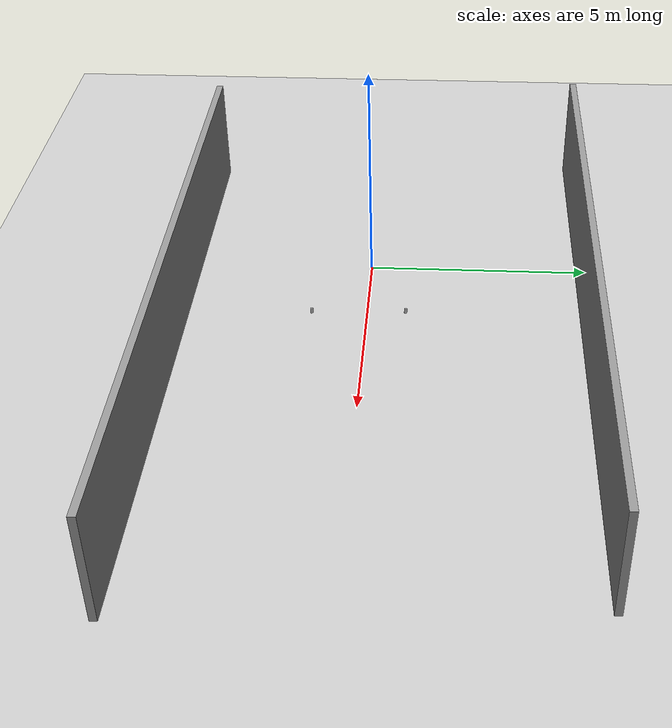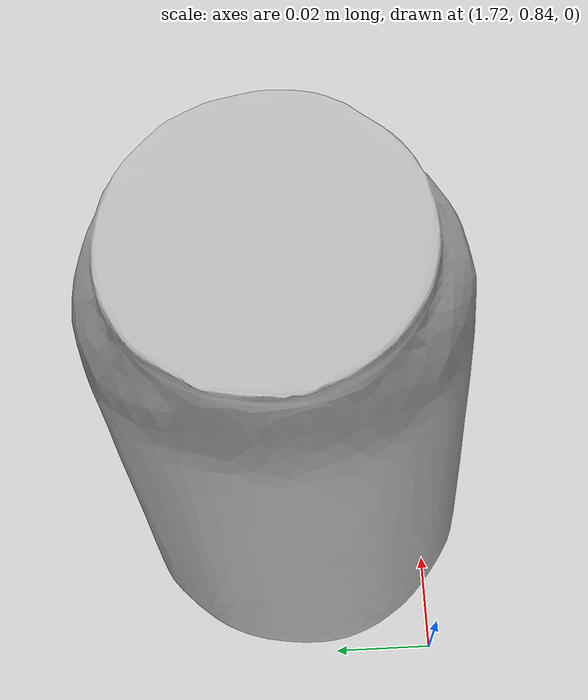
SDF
<sdf version="1.6">
 <world name="default">
  <light name="sun" type="directional">
   <pose>0 0 10 0 -0 0</pose>
   <diffuse>0.8 0.8 0.8 1</diffuse>
   <specular>0.2 0.2 0.2 1</specular>
   <attenuation>
    <range>1000</range>
    <constant>0.9</constant>
    <linear>0.01</linear>
    <quadratic>0.001</quadratic>
   </attenuation>
   <direction>-0.5 0.1 -0.9</direction>
  </light>
  <model name="ground_plane">
   <static>1</static>
   <link name="link">
    <collision name="collision">
     <geometry><plane><normal>0 0 1</normal><size>100 100</size></plane></geometry>
     <surface>
      <contact><collide_bitmask>65535</collide_bitmask></contact>
      <friction><ode><mu>100</mu><mu2>50</mu2></ode></friction>
     </surface>
    </collision>
    <visual name="visual">
     <cast_shadows>0</cast_shadows>
     <geometry><plane><normal>0 0 1</normal><size>100 100</size></plane></geometry>
     <material>
      <script><uri>file://media/materials/scripts/gazebo.material</uri><name>Gazebo/Grey</name></script>
     </material>
    </visual>
   </link>
  </model>
  <gravity>0 0 -9.8</gravity>
  <magnetic_field>6e-06 2.3e-05 -4.2e-05</magnetic_field>
  <atmosphere type="adiabatic"/>
  <physics name="default_physics" default="0" type="ode">
   <max_step_size>0.001</max_step_size>
   <real_time_factor>1</real_time_factor>
   <real_time_update_rate>1000</real_time_update_rate>
  </physics>
  <scene><ambient>0.4 0.4 0.4 1</ambient><background>0.7 0.7 0.7 1</background><shadows>1</shadows></scene>
  <audio><device>default</device></audio>
  <spherical_coordinates>
   <surface_model>EARTH_WGS84</surface_model>
   <latitude_deg>0</latitude_deg>
   <longitude_deg>0</longitude_deg>
   <elevation>0</elevation>
   <heading_deg>0</heading_deg>
  </spherical_coordinates>
  <model name="Untitled">
   <pose>2.72268 4.83729 0 0 -0 0</pose>
   <link name="Wall_1">
    <collision name="Wall_1_Collision">
     <geometry><box><size>15 0.15 2.5</size></box></geometry>
     <pose>0 0 1.25 0 -0 0</pose>
    </collision>
    <visual name="Wall_1_Visual">
     <pose>0 0 1.25 0 -0 0</pose>
     <geometry><box><size>15 0.15 2.5</size></box></geometry>
     <material>
      <script><uri>file://media/materials/scripts/gazebo.material</uri><name>Gazebo/Grey</name></script>
      <ambient>1 1 1 1</ambient>
     </material>
     <meta><layer>0</layer></meta>
    </visual>
   </link>
   <static>1</static>
  </model>
  <model name="Untitled_0">
   <pose>3.22168 -4.06956 0 0 -0 0</pose>
   <link name="Wall_1">
    <collision name="Wall_1_Collision">
     <geometry><box><size>15 0.15 2.5</size></box></geometry>
     <pose>0 0 1.25 0 -0 0</pose>
    </collision>
    <visual name="Wall_1_Visual">
     <pose>0 0 1.25 0 -0 0</pose>
     <geometry><box><size>15 0.15 2.5</size></box></geometry>
     <material>
      <script><uri>file://media/materials/scripts/gazebo.material</uri><name>Gazebo/Grey</name></script>
      <ambient>1 1 1 1</ambient>
     </material>
     <meta><layer>0</layer></meta>
    </visual>
   </link>
   <static>1</static>
  </model>
  <model name="coke_can">
   <link name="link">
    <inertial>
     <pose>0 0 0.06 0 -0 0</pose>
     <mass>0.39</mass>
     <inertia>
      <ixx>0.00055575</ixx>
      <ixy>0</ixy>
      <ixz>0</ixz>
      <iyy>0.00055575</iyy>
      <iyz>0</iyz>
      <izz>0.0001755</izz>
     </inertia>
    </inertial>
    <collision name="collision">
     <pose>0.003937 0.004724 -0.18 0 -0 0</pose>
     <geometry><mesh><uri>model://coke_can/meshes/coke_can.dae</uri></mesh></geometry>
     <surface>
      <friction><ode><mu>1</mu><mu2>1</mu2></ode></friction>
      <contact><ode><kp>1e+07</kp><kd>1</kd><min_depth>0.001</min_depth><max_vel>0.1</max_vel></ode></contact>
     </surface>
    </collision>
    <visual name="visual">
     <pose>0.003937 0.004724 -0.18 0 -0 0</pose>
     <geometry><mesh><uri>model://coke_can/meshes/coke_can.dae</uri></mesh></geometry>
    </visual>
   </link>
   <pose>1.82768 -1.24029 -0.002748 -0.060427 0.004061 -0.000539</pose>
  </model>
  <model name="coke_can_0">
   <link name="link">
    <inertial>
     <pose>0 0 0.06 0 -0 0</pose>
     <mass>0.39</mass>
     <inertia>
      <ixx>0.00055575</ixx>
      <ixy>0</ixy>
      <ixz>0</ixz>
      <iyy>0.00055575</iyy>
      <iyz>0</iyz>
      <izz>0.0001755</izz>
     </inertia>
    </inertial>
    <collision name="collision">
     <pose>0.003937 0.004724 -0.18 0 -0 0</pose>
     <geometry><mesh><uri>model://coke_can/meshes/coke_can.dae</uri></mesh></geometry>
     <surface>
      <friction><ode><mu>1</mu><mu2>1</mu2></ode></friction>
      <contact><ode><kp>1e+07</kp><kd>1</kd><min_depth>0.001</min_depth><max_vel>0.1</max_vel></ode></contact>
     </surface>
    </collision>
    <visual name="visual">
     <pose>0.003937 0.004724 -0.18 0 -0 0</pose>
     <geometry><mesh><uri>model://coke_can/meshes/coke_can.dae</uri></mesh></geometry>
    </visual>
   </link>
   <pose>1.75329 0.865899 -0.002718 -0.058601 0.005325 -0.00052</pose>
  </model>
 </world>
</sdf>
